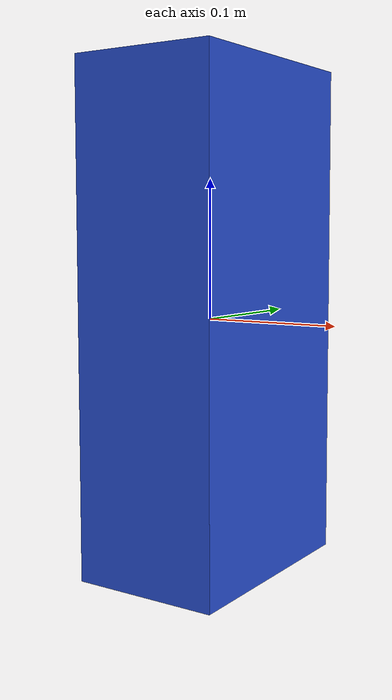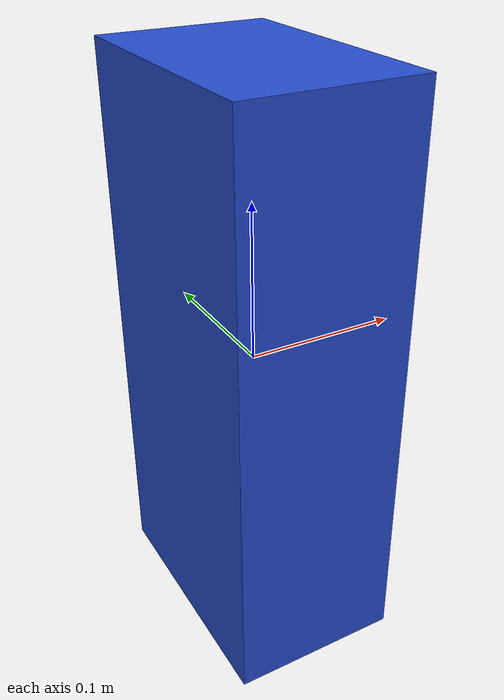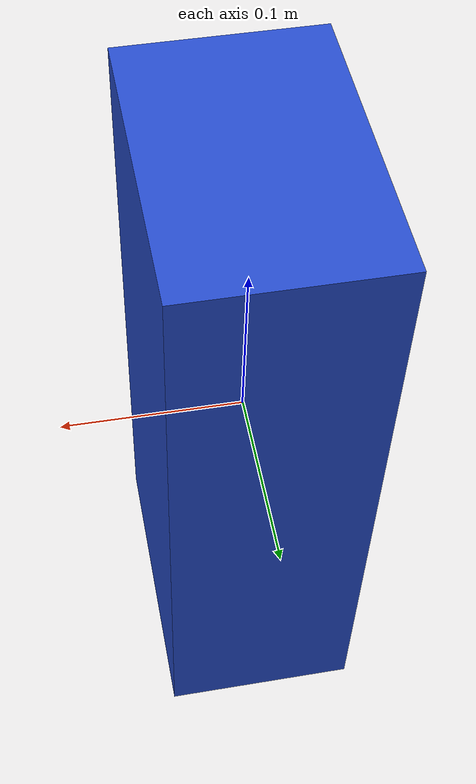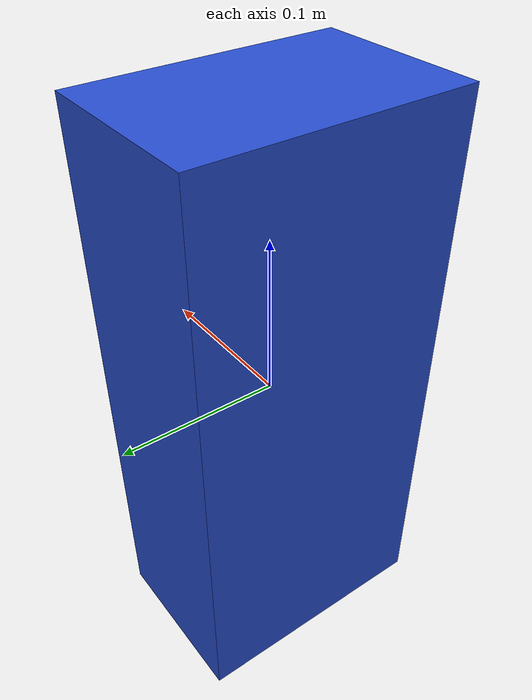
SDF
<sdf version="1.6"><model name="model"><link name="link"><pose>0 0 0 0 0 1.5764624595364896</pose><gravity>true</gravity><static>true</static><inertial><mass>1.0</mass><inertia><ixx>0.16666</ixx><ixy>0</ixy><ixz>0</ixz><iyy>0.16666</iyy><iyz>0</iyz><izz>0.16666</izz></inertia></inertial><collision name="collision"><geometry><box><size>0.1637941025414154 0.10731488468101524 0.36140274922904436</size></box></geometry></collision><visual name="visual"><geometry><box><size>0.1637941025414154 0.10731488468101524 0.36140274922904436</size></box></geometry><material><script><name>Gazebo/Blue</name><uri>file://media/materials/scripts/gazebo.material</uri></script></material></visual></link></model></sdf>
